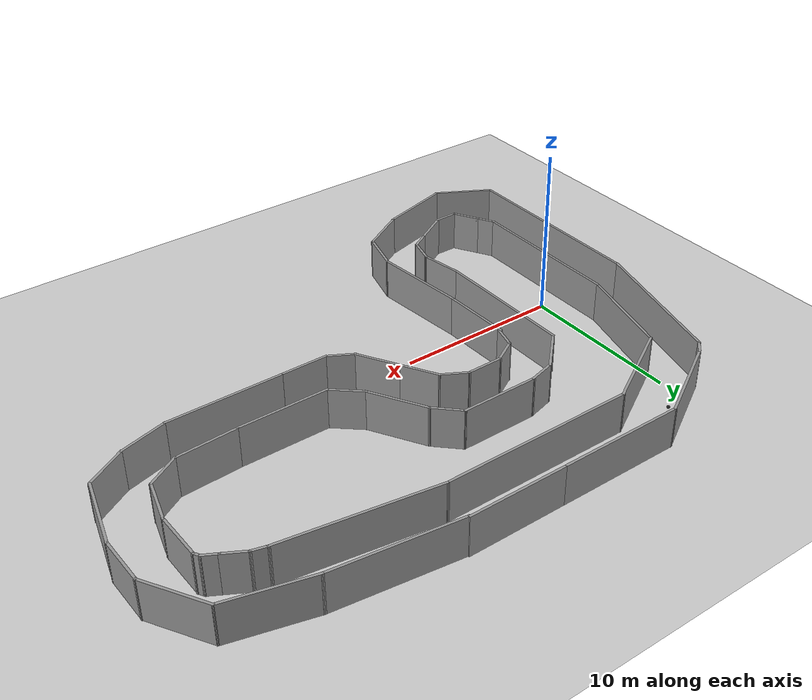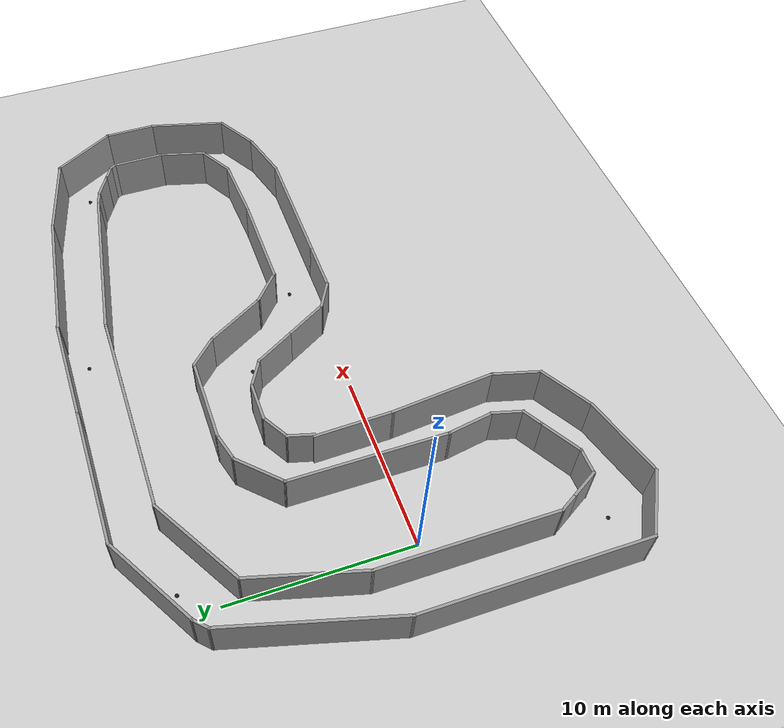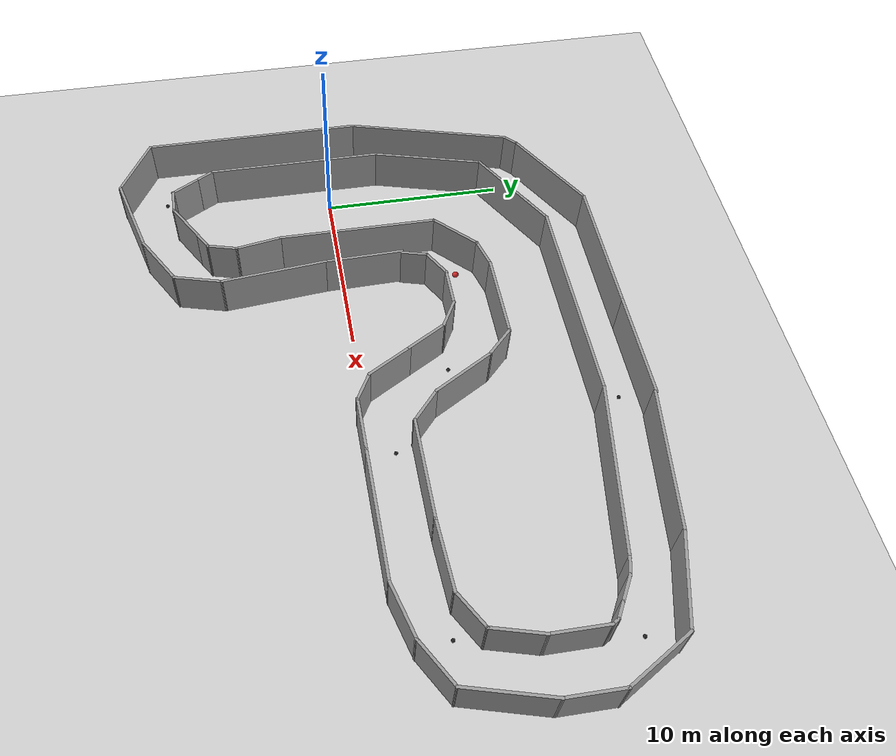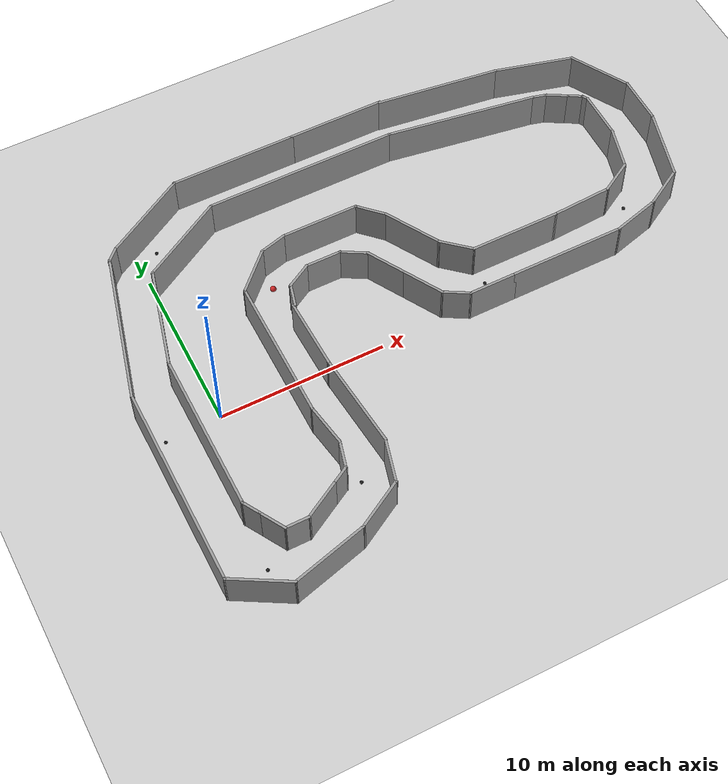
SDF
<sdf version="1.7">
 <world name="default">
  <light name="sun" type="directional">
   <pose>0 0 10 0 -0 0</pose>
   <diffuse>0.8 0.8 0.8 1</diffuse>
   <specular>0.2 0.2 0.2 1</specular>
   <attenuation>
    <range>1000</range>
    <constant>0.9</constant>
    <linear>0.01</linear>
    <quadratic>0.001</quadratic>
   </attenuation>
   <direction>-0.5 0.1 -0.9</direction>
   <spot><inner_angle>0</inner_angle><outer_angle>0</outer_angle><falloff>0</falloff></spot>
  </light>
  <model name="ground_plane">
   <static>1</static>
   <link name="link">
    <collision name="collision">
     <geometry><plane><normal>0 0 1</normal><size>100 100</size></plane></geometry>
     <surface>
      <contact><collide_bitmask>65535</collide_bitmask></contact>
      <friction><ode><mu>100</mu><mu2>50</mu2></ode></friction>
     </surface>
    </collision>
    <visual name="visual">
     <cast_shadows>0</cast_shadows>
     <geometry><plane><normal>0 0 1</normal><size>100 100</size></plane></geometry>
     <material>
      <script><uri>file://media/materials/scripts/gazebo.material</uri><name>Gazebo/Grey</name></script>
     </material>
    </visual>
   </link>
  </model>
  <gravity>0 0 -9.8</gravity>
  <magnetic_field>6e-06 2.3e-05 -4.2e-05</magnetic_field>
  <atmosphere type="adiabatic"/>
  <physics type="ode">
   <max_step_size>0.001</max_step_size>
   <real_time_factor>1</real_time_factor>
   <real_time_update_rate>1000</real_time_update_rate>
  </physics>
  <scene><ambient>0.4 0.4 0.4 1</ambient><background>0.7 0.7 0.7 1</background><shadows>1</shadows></scene>
  <spherical_coordinates>
   <surface_model>EARTH_WGS84</surface_model>
   <latitude_deg>0</latitude_deg>
   <longitude_deg>0</longitude_deg>
   <elevation>0</elevation>
   <heading_deg>0</heading_deg>
  </spherical_coordinates>
  <model name="track_0">
   <pose>13.4852 1.17639 0 0 -0 0</pose>
   <link name="Wall_0">
    <collision name="Wall_0_Collision">
     <geometry><box><size>8.75 0.15 2.5</size></box></geometry>
     <pose>0 0 1.25 0 -0 0</pose>
    </collision>
    <visual name="Wall_0_Visual">
     <pose>0 0 1.25 0 -0 0</pose>
     <geometry><box><size>8.75 0.15 2.5</size></box></geometry>
     <material>
      <script><uri>file://media/materials/scripts/gazebo.material</uri><name>Gazebo/Grey</name></script>
      <ambient>1 1 1 1</ambient>
     </material>
     <meta><layer>0</layer></meta>
    </visual>
    <pose>-9.34764 -0.033182 0 0 -0 -1.5708</pose>
   </link>
   <link name="Wall_10">
    <collision name="Wall_10_Collision">
     <geometry><box><size>5.5 0.15 2.5</size></box></geometry>
     <pose>0 0 1.25 0 -0 0</pose>
    </collision>
    <visual name="Wall_10_Visual">
     <pose>0 0 1.25 0 -0 0</pose>
     <geometry><box><size>5.5 0.15 2.5</size></box></geometry>
     <material>
      <script><uri>file://media/materials/scripts/gazebo.material</uri><name>Gazebo/Grey</name></script>
      <ambient>1 1 1 1</ambient>
     </material>
     <meta><layer>0</layer></meta>
    </visual>
    <pose>6.11964 0.909249 0 0 -0 0</pose>
   </link>
   <link name="Wall_11">
    <collision name="Wall_11_Collision">
     <geometry><box><size>3.76655 0.15 2.5</size></box></geometry>
     <pose>0 0 1.25 0 -0 0</pose>
    </collision>
    <visual name="Wall_11_Visual">
     <pose>0 0 1.25 0 -0 0</pose>
     <geometry><box><size>3.76655 0.15 2.5</size></box></geometry>
     <material>
      <script><uri>file://media/materials/scripts/gazebo.material</uri><name>Gazebo/Grey</name></script>
      <ambient>1 1 1 1</ambient>
     </material>
     <meta><layer>0</layer></meta>
    </visual>
    <pose>10.6005 1.0023 0 0 -0 0.051479</pose>
   </link>
   <link name="Wall_12">
    <collision name="Wall_12_Collision">
     <geometry><box><size>2.25 0.15 2.5</size></box></geometry>
     <pose>0 0 1.25 0 -0 0</pose>
    </collision>
    <visual name="Wall_12_Visual">
     <pose>0 0 1.25 0 -0 0</pose>
     <geometry><box><size>2.25 0.15 2.5</size></box></geometry>
     <material>
      <script><uri>file://media/materials/scripts/gazebo.material</uri><name>Gazebo/Grey</name></script>
      <ambient>1 1 1 1</ambient>
     </material>
     <meta><layer>0</layer></meta>
    </visual>
    <pose>13.3157 1.62034 0 0 -0 0.523599</pose>
   </link>
   <link name="Wall_13">
    <collision name="Wall_13_Collision">
     <geometry><box><size>2.75 0.15 2.5</size></box></geometry>
     <pose>0 0 1.25 0 -0 0</pose>
    </collision>
    <visual name="Wall_13_Visual">
     <pose>0 0 1.25 0 -0 0</pose>
     <geometry><box><size>2.75 0.15 2.5</size></box></geometry>
     <material>
      <script><uri>file://media/materials/scripts/gazebo.material</uri><name>Gazebo/Grey</name></script>
      <ambient>1 1 1 1</ambient>
     </material>
     <meta><layer>0</layer></meta>
    </visual>
    <pose>14.5615 3.40105 0 0 -0 1.309</pose>
   </link>
   <link name="Wall_14">
    <collision name="Wall_14_Collision">
     <geometry><box><size>3 0.15 2.5</size></box></geometry>
     <pose>0 0 1.25 0 -0 0</pose>
    </collision>
    <visual name="Wall_14_Visual">
     <pose>0 0 1.25 0 -0 0</pose>
     <geometry><box><size>3 0.15 2.5</size></box></geometry>
     <material>
      <script><uri>file://media/materials/scripts/gazebo.material</uri><name>Gazebo/Grey</name></script>
      <ambient>1 1 1 1</ambient>
     </material>
     <meta><layer>0</layer></meta>
    </visual>
    <pose>14.898 6.08175 0 0 -0 1.5708</pose>
   </link>
   <link name="Wall_15">
    <collision name="Wall_15_Collision">
     <geometry><box><size>0.5 0.15 2.5</size></box></geometry>
     <pose>0 0 1.25 0 -0 0</pose>
    </collision>
    <visual name="Wall_15_Visual">
     <pose>0 0 1.25 0 -0 0</pose>
     <geometry><box><size>0.5 0.15 2.5</size></box></geometry>
     <material>
      <script><uri>file://media/materials/scripts/gazebo.material</uri><name>Gazebo/Grey</name></script>
      <ambient>1 1 1 1</ambient>
     </material>
     <meta><layer>0</layer></meta>
    </visual>
    <pose>14.8105 7.65831 0 0 -0 2.0944</pose>
   </link>
   <link name="Wall_16">
    <collision name="Wall_16_Collision">
     <geometry><box><size>1 0.15 2.5</size></box></geometry>
     <pose>0 0 1.25 0 -0 0</pose>
    </collision>
    <visual name="Wall_16_Visual">
     <pose>0 0 1.25 0 -0 0</pose>
     <geometry><box><size>1 0.15 2.5</size></box></geometry>
     <material>
      <script><uri>file://media/materials/scripts/gazebo.material</uri><name>Gazebo/Grey</name></script>
      <ambient>1 1 1 1</ambient>
     </material>
     <meta><layer>0</layer></meta>
    </visual>
    <pose>14.3549 8.02236 0 0 -0 2.61799</pose>
   </link>
   <link name="Wall_17">
    <collision name="Wall_17_Collision">
     <geometry><box><size>1.5 0.15 2.5</size></box></geometry>
     <pose>0 0 1.25 0 -0 0</pose>
    </collision>
    <visual name="Wall_17_Visual">
     <pose>0 0 1.25 0 -0 0</pose>
     <geometry><box><size>1.5 0.15 2.5</size></box></geometry>
     <material>
      <script><uri>file://media/materials/scripts/gazebo.material</uri><name>Gazebo/Grey</name></script>
      <ambient>1 1 1 1</ambient>
     </material>
     <meta><layer>0</layer></meta>
    </visual>
    <pose>13.4023 8.57236 0 0 -0 2.61799</pose>
   </link>
   <link name="Wall_18">
    <collision name="Wall_18_Collision">
     <geometry><box><size>1 0.15 2.5</size></box></geometry>
     <pose>0 0 1.25 0 -0 0</pose>
    </collision>
    <visual name="Wall_18_Visual">
     <pose>0 0 1.25 0 -0 0</pose>
     <geometry><box><size>1 0.15 2.5</size></box></geometry>
     <material>
      <script><uri>file://media/materials/scripts/gazebo.material</uri><name>Gazebo/Grey</name></script>
      <ambient>1 1 1 1</ambient>
     </material>
     <meta><layer>0</layer></meta>
    </visual>
    <pose>12.4072 9.01986 0 0 -0 2.87979</pose>
   </link>
   <link name="Wall_19">
    <collision name="Wall_19_Collision">
     <geometry><box><size>9.26731 0.15 2.5</size></box></geometry>
     <pose>0 0 1.25 0 -0 0</pose>
    </collision>
    <visual name="Wall_19_Visual">
     <pose>0 0 1.25 0 -0 0</pose>
     <geometry><box><size>9.26731 0.15 2.5</size></box></geometry>
     <material>
      <script><uri>file://media/materials/scripts/gazebo.material</uri><name>Gazebo/Grey</name></script>
      <ambient>1 1 1 1</ambient>
     </material>
     <meta><layer>0</layer></meta>
    </visual>
    <pose>7.4935 9.83885 0 0 -0 2.98543</pose>
   </link>
   <link name="Wall_20">
    <collision name="Wall_20_Collision">
     <geometry><box><size>11.75 0.15 2.5</size></box></geometry>
     <pose>0 0 1.25 0 -0 0</pose>
    </collision>
    <visual name="Wall_20_Visual">
     <pose>0 0 1.25 0 -0 0</pose>
     <geometry><box><size>11.75 0.15 2.5</size></box></geometry>
     <material>
      <script><uri>file://media/materials/scripts/gazebo.material</uri><name>Gazebo/Grey</name></script>
      <ambient>1 1 1 1</ambient>
     </material>
     <meta><layer>0</layer></meta>
    </visual>
    <pose>-2.80968 10.5478 0 0 -0 3.14159</pose>
   </link>
   <link name="Wall_22">
    <collision name="Wall_22_Collision">
     <geometry><box><size>5.75 0.15 2.5</size></box></geometry>
     <pose>0 0 1.25 0 -0 0</pose>
    </collision>
    <visual name="Wall_22_Visual">
     <pose>0 0 1.25 0 -0 0</pose>
     <geometry><box><size>5.75 0.15 2.5</size></box></geometry>
     <material>
      <script><uri>file://media/materials/scripts/gazebo.material</uri><name>Gazebo/Grey</name></script>
      <ambient>1 1 1 1</ambient>
     </material>
     <meta><layer>0</layer></meta>
    </visual>
    <pose>-11.0346 9.14784 0 0 -0 -2.61799</pose>
   </link>
   <link name="Wall_23">
    <collision name="Wall_23_Collision">
     <geometry><box><size>6.25 0.15 2.5</size></box></geometry>
     <pose>0 0 1.25 0 -0 0</pose>
    </collision>
    <visual name="Wall_23_Visual">
     <pose>0 0 1.25 0 -0 0</pose>
     <geometry><box><size>6.25 0.15 2.5</size></box></geometry>
     <material>
      <script><uri>file://media/materials/scripts/gazebo.material</uri><name>Gazebo/Grey</name></script>
      <ambient>1 1 1 1</ambient>
     </material>
     <meta><layer>0</layer></meta>
    </visual>
    <pose>-14.2488 4.80176 0 0 -0 -1.8326</pose>
   </link>
   <link name="Wall_25">
    <collision name="Wall_25_Collision">
     <geometry><box><size>4.35837 0.15 2.5</size></box></geometry>
     <pose>0 0 1.25 0 -0 0</pose>
    </collision>
    <visual name="Wall_25_Visual">
     <pose>0 0 1.25 0 -0 0</pose>
     <geometry><box><size>4.35837 0.15 2.5</size></box></geometry>
     <material>
      <script><uri>file://media/materials/scripts/gazebo.material</uri><name>Gazebo/Grey</name></script>
      <ambient>1 1 1 1</ambient>
     </material>
     <meta><layer>0</layer></meta>
    </visual>
    <pose>-7.32116 0.004506 0 0 -0 1.59623</pose>
   </link>
   <link name="Wall_26">
    <collision name="Wall_26_Collision">
     <geometry><box><size>1.5 0.15 2.5</size></box></geometry>
     <pose>0 0 1.25 0 -0 0</pose>
    </collision>
    <visual name="Wall_26_Visual">
     <pose>0 0 1.25 0 -0 0</pose>
     <geometry><box><size>1.5 0.15 2.5</size></box></geometry>
     <material>
      <script><uri>file://media/materials/scripts/gazebo.material</uri><name>Gazebo/Grey</name></script>
      <ambient>1 1 1 1</ambient>
     </material>
     <meta><layer>0</layer></meta>
    </visual>
    <pose>-7.09296 2.76001 0 0 -0 1.309</pose>
   </link>
   <link name="Wall_30">
    <collision name="Wall_30_Collision">
     <geometry><box><size>1.75 0.15 2.5</size></box></geometry>
     <pose>0 0 1.25 0 -0 0</pose>
    </collision>
    <visual name="Wall_30_Visual">
     <pose>0 0 1.25 0 -0 0</pose>
     <geometry><box><size>1.75 0.15 2.5</size></box></geometry>
     <material>
      <script><uri>file://media/materials/scripts/gazebo.material</uri><name>Gazebo/Grey</name></script>
      <ambient>1 1 1 1</ambient>
     </material>
     <meta><layer>0</layer></meta>
    </visual>
    <pose>-6.22543 3.81201 0 0 -0 0.523599</pose>
   </link>
   <link name="Wall_31">
    <collision name="Wall_31_Collision">
     <geometry><box><size>2.25 0.15 2.5</size></box></geometry>
     <pose>0 0 1.25 0 -0 0</pose>
    </collision>
    <visual name="Wall_31_Visual">
     <pose>0 0 1.25 0 -0 0</pose>
     <geometry><box><size>2.25 0.15 2.5</size></box></geometry>
     <material>
      <script><uri>file://media/materials/scripts/gazebo.material</uri><name>Gazebo/Grey</name></script>
      <ambient>1 1 1 1</ambient>
     </material>
     <meta><layer>0</layer></meta>
    </visual>
    <pose>-4.48261 4.21201 0 0 -0 0</pose>
   </link>
   <link name="Wall_32">
    <collision name="Wall_32_Collision">
     <geometry><box><size>1.75 0.15 2.5</size></box></geometry>
     <pose>0 0 1.25 0 -0 0</pose>
    </collision>
    <visual name="Wall_32_Visual">
     <pose>0 0 1.25 0 -0 0</pose>
     <geometry><box><size>1.75 0.15 2.5</size></box></geometry>
     <material>
      <script><uri>file://media/materials/scripts/gazebo.material</uri><name>Gazebo/Grey</name></script>
      <ambient>1 1 1 1</ambient>
     </material>
     <meta><layer>0</layer></meta>
    </visual>
    <pose>-2.73979 3.81201 0 0 -0 -0.523599</pose>
   </link>
   <link name="Wall_33">
    <collision name="Wall_33_Collision">
     <geometry><box><size>2.5 0.15 2.5</size></box></geometry>
     <pose>0 0 1.25 0 -0 0</pose>
    </collision>
    <visual name="Wall_33_Visual">
     <pose>0 0 1.25 0 -0 0</pose>
     <geometry><box><size>2.5 0.15 2.5</size></box></geometry>
     <material>
      <script><uri>file://media/materials/scripts/gazebo.material</uri><name>Gazebo/Grey</name></script>
      <ambient>1 1 1 1</ambient>
     </material>
     <meta><layer>0</layer></meta>
    </visual>
    <pose>-1.45947 2.39443 0 0 -0 -1.0472</pose>
   </link>
   <link name="Wall_34">
    <collision name="Wall_34_Collision">
     <geometry><box><size>2.75 0.15 2.5</size></box></geometry>
     <pose>0 0 1.25 0 -0 0</pose>
    </collision>
    <visual name="Wall_34_Visual">
     <pose>0 0 1.25 0 -0 0</pose>
     <geometry><box><size>2.75 0.15 2.5</size></box></geometry>
     <material>
      <script><uri>file://media/materials/scripts/gazebo.material</uri><name>Gazebo/Grey</name></script>
      <ambient>1 1 1 1</ambient>
     </material>
     <meta><layer>0</layer></meta>
    </visual>
    <pose>-0.221973 0.251015 0 0 -0 -1.0472</pose>
   </link>
   <link name="Wall_35">
    <collision name="Wall_35_Collision">
     <geometry><box><size>1.75 0.15 2.5</size></box></geometry>
     <pose>0 0 1.25 0 -0 0</pose>
    </collision>
    <visual name="Wall_35_Visual">
     <pose>0 0 1.25 0 -0 0</pose>
     <geometry><box><size>1.75 0.15 2.5</size></box></geometry>
     <material>
      <script><uri>file://media/materials/scripts/gazebo.material</uri><name>Gazebo/Grey</name></script>
      <ambient>1 1 1 1</ambient>
     </material>
     <meta><layer>0</layer></meta>
    </visual>
    <pose>1.12085 -1.27482 0 0 -0 -0.523599</pose>
   </link>
   <link name="Wall_36">
    <collision name="Wall_36_Collision">
     <geometry><box><size>3 0.15 2.5</size></box></geometry>
     <pose>0 0 1.25 0 -0 0</pose>
    </collision>
    <visual name="Wall_36_Visual">
     <pose>0 0 1.25 0 -0 0</pose>
     <geometry><box><size>3 0.15 2.5</size></box></geometry>
     <material>
      <script><uri>file://media/materials/scripts/gazebo.material</uri><name>Gazebo/Grey</name></script>
      <ambient>1 1 1 1</ambient>
     </material>
     <meta><layer>0</layer></meta>
    </visual>
    <pose>3.23867 -1.67482 0 0 -0 0</pose>
   </link>
   <link name="Wall_37">
    <collision name="Wall_37_Collision">
     <geometry><box><size>7 0.15 2.5</size></box></geometry>
     <pose>0 0 1.25 0 -0 0</pose>
    </collision>
    <visual name="Wall_37_Visual">
     <pose>0 0 1.25 0 -0 0</pose>
     <geometry><box><size>7 0.15 2.5</size></box></geometry>
     <material>
      <script><uri>file://media/materials/scripts/gazebo.material</uri><name>Gazebo/Grey</name></script>
      <ambient>1 1 1 1</ambient>
     </material>
     <meta><layer>0</layer></meta>
    </visual>
    <pose>8.08867 -1.67482 0 0 -0 0</pose>
   </link>
   <link name="Wall_38">
    <collision name="Wall_38_Collision">
     <geometry><box><size>3 0.15 2.5</size></box></geometry>
     <pose>0 0 1.25 0 -0 0</pose>
    </collision>
    <visual name="Wall_38_Visual">
     <pose>0 0 1.25 0 -0 0</pose>
     <geometry><box><size>3 0.15 2.5</size></box></geometry>
     <material>
      <script><uri>file://media/materials/scripts/gazebo.material</uri><name>Gazebo/Grey</name></script>
      <ambient>1 1 1 1</ambient>
     </material>
     <meta><layer>0</layer></meta>
    </visual>
    <pose>12.8901 -1.306 0 0 -0 0.261799</pose>
   </link>
   <link name="Wall_39">
    <collision name="Wall_39_Collision">
     <geometry><box><size>2.75 0.15 2.5</size></box></geometry>
     <pose>0 0 1.25 0 -0 0</pose>
    </collision>
    <visual name="Wall_39_Visual">
     <pose>0 0 1.25 0 -0 0</pose>
     <geometry><box><size>2.75 0.15 2.5</size></box></geometry>
     <material>
      <script><uri>file://media/materials/scripts/gazebo.material</uri><name>Gazebo/Grey</name></script>
      <ambient>1 1 1 1</ambient>
     </material>
     <meta><layer>0</layer></meta>
    </visual>
    <pose>15.3924 -0.287184 0 0 -0 0.523599</pose>
   </link>
   <link name="Wall_4">
    <collision name="Wall_4_Collision">
     <geometry><box><size>3 0.15 2.5</size></box></geometry>
     <pose>0 0 1.25 0 -0 0</pose>
    </collision>
    <visual name="Wall_4_Visual">
     <pose>0 0 1.25 0 -0 0</pose>
     <geometry><box><size>3 0.15 2.5</size></box></geometry>
     <material>
      <script><uri>file://media/materials/scripts/gazebo.material</uri><name>Gazebo/Grey</name></script>
      <ambient>1 1 1 1</ambient>
     </material>
     <meta><layer>0</layer></meta>
    </visual>
    <pose>-8.34001 5.27445 0 0 -0 0.785398</pose>
   </link>
   <link name="Wall_40">
    <collision name="Wall_40_Collision">
     <geometry><box><size>4.5 0.15 2.5</size></box></geometry>
     <pose>0 0 1.25 0 -0 0</pose>
    </collision>
    <visual name="Wall_40_Visual">
     <pose>0 0 1.25 0 -0 0</pose>
     <geometry><box><size>4.5 0.15 2.5</size></box></geometry>
     <material>
      <script><uri>file://media/materials/scripts/gazebo.material</uri><name>Gazebo/Grey</name></script>
      <ambient>1 1 1 1</ambient>
     </material>
     <meta><layer>0</layer></meta>
    </visual>
    <pose>17.0812 2.46371 0 0 -0 1.309</pose>
   </link>
   <link name="Wall_41">
    <collision name="Wall_41_Collision">
     <geometry><box><size>3 0.15 2.5</size></box></geometry>
     <pose>0 0 1.25 0 -0 0</pose>
    </collision>
    <visual name="Wall_41_Visual">
     <pose>0 0 1.25 0 -0 0</pose>
     <geometry><box><size>3 0.15 2.5</size></box></geometry>
     <material>
      <script><uri>file://media/materials/scripts/gazebo.material</uri><name>Gazebo/Grey</name></script>
      <ambient>1 1 1 1</ambient>
     </material>
     <meta><layer>0</layer></meta>
    </visual>
    <pose>17.6441 5.98959 0 0 -0 1.5708</pose>
   </link>
   <link name="Wall_42">
    <collision name="Wall_42_Collision">
     <geometry><box><size>4 0.15 2.5</size></box></geometry>
     <pose>0 0 1.25 0 -0 0</pose>
    </collision>
    <visual name="Wall_42_Visual">
     <pose>0 0 1.25 0 -0 0</pose>
     <geometry><box><size>4 0.15 2.5</size></box></geometry>
     <material>
      <script><uri>file://media/materials/scripts/gazebo.material</uri><name>Gazebo/Grey</name></script>
      <ambient>1 1 1 1</ambient>
     </material>
     <meta><layer>0</layer></meta>
    </visual>
    <pose>16.6816 9.08169 0 0 -0 2.0944</pose>
   </link>
   <link name="Wall_43">
    <collision name="Wall_43_Collision">
     <geometry><box><size>5 0.15 2.5</size></box></geometry>
     <pose>0 0 1.25 0 -0 0</pose>
    </collision>
    <visual name="Wall_43_Visual">
     <pose>0 0 1.25 0 -0 0</pose>
     <geometry><box><size>5 0.15 2.5</size></box></geometry>
     <material>
      <script><uri>file://media/materials/scripts/gazebo.material</uri><name>Gazebo/Grey</name></script>
      <ambient>1 1 1 1</ambient>
     </material>
     <meta><layer>0</layer></meta>
    </visual>
    <pose>13.3767 11.3764 0 0 -0 2.87979</pose>
   </link>
   <link name="Wall_44">
    <collision name="Wall_44_Collision">
     <geometry><box><size>7.63781 0.15 2.5</size></box></geometry>
     <pose>0 0 1.25 0 -0 0</pose>
    </collision>
    <visual name="Wall_44_Visual">
     <pose>0 0 1.25 0 -0 0</pose>
     <geometry><box><size>7.63781 0.15 2.5</size></box></geometry>
     <material>
      <script><uri>file://media/materials/scripts/gazebo.material</uri><name>Gazebo/Grey</name></script>
      <ambient>1 1 1 1</ambient>
     </material>
     <meta><layer>0</layer></meta>
    </visual>
    <pose>7.32315 12.4979 0 0 -0 3.00931</pose>
   </link>
   <link name="Wall_45">
    <collision name="Wall_45_Collision">
     <geometry><box><size>6 0.15 2.5</size></box></geometry>
     <pose>0 0 1.25 0 -0 0</pose>
    </collision>
    <visual name="Wall_45_Visual">
     <pose>0 0 1.25 0 -0 0</pose>
     <geometry><box><size>6 0.15 2.5</size></box></geometry>
     <material>
      <script><uri>file://media/materials/scripts/gazebo.material</uri><name>Gazebo/Grey</name></script>
      <ambient>1 1 1 1</ambient>
     </material>
     <meta><layer>0</layer></meta>
    </visual>
    <pose>0.686952 13.0455 0 0 -0 3.14159</pose>
   </link>
   <link name="Wall_47">
    <collision name="Wall_47_Collision">
     <geometry><box><size>7.75 0.15 2.5</size></box></geometry>
     <pose>0 0 1.25 0 -0 0</pose>
    </collision>
    <visual name="Wall_47_Visual">
     <pose>0 0 1.25 0 -0 0</pose>
     <geometry><box><size>7.75 0.15 2.5</size></box></geometry>
     <material>
      <script><uri>file://media/materials/scripts/gazebo.material</uri><name>Gazebo/Grey</name></script>
      <ambient>1 1 1 1</ambient>
     </material>
     <meta><layer>0</layer></meta>
    </visual>
    <pose>-6.03805 13.0455 0 0 -0 3.14159</pose>
   </link>
   <link name="Wall_48">
    <collision name="Wall_48_Collision">
     <geometry><box><size>5.75 0.15 2.5</size></box></geometry>
     <pose>0 0 1.25 0 -0 0</pose>
    </collision>
    <visual name="Wall_48_Visual">
     <pose>0 0 1.25 0 -0 0</pose>
     <geometry><box><size>5.75 0.15 2.5</size></box></geometry>
     <material>
      <script><uri>file://media/materials/scripts/gazebo.material</uri><name>Gazebo/Grey</name></script>
      <ambient>1 1 1 1</ambient>
     </material>
     <meta><layer>0</layer></meta>
    </visual>
    <pose>-12.2629 11.6455 0 0 -0 -2.61799</pose>
   </link>
   <link name="Wall_49">
    <collision name="Wall_49_Collision">
     <geometry><box><size>1 0.15 2.5</size></box></geometry>
     <pose>0 0 1.25 0 -0 0</pose>
    </collision>
    <visual name="Wall_49_Visual">
     <pose>0 0 1.25 0 -0 0</pose>
     <geometry><box><size>1 0.15 2.5</size></box></geometry>
     <material>
      <script><uri>file://media/materials/scripts/gazebo.material</uri><name>Gazebo/Grey</name></script>
      <ambient>1 1 1 1</ambient>
     </material>
     <meta><layer>0</layer></meta>
    </visual>
    <pose>-14.9883 9.94496 0 0 -0 -2.35619</pose>
   </link>
   <link name="Wall_5">
    <collision name="Wall_5_Collision">
     <geometry><box><size>1.75 0.15 2.5</size></box></geometry>
     <pose>0 0 1.25 0 -0 0</pose>
    </collision>
    <visual name="Wall_5_Visual">
     <pose>0 0 1.25 0 -0 0</pose>
     <geometry><box><size>1.75 0.15 2.5</size></box></geometry>
     <material>
      <script><uri>file://media/materials/scripts/gazebo.material</uri><name>Gazebo/Grey</name></script>
      <ambient>1 1 1 1</ambient>
     </material>
     <meta><layer>0</layer></meta>
    </visual>
    <pose>-6.55965 6.48913 0 0 -0 0.261799</pose>
   </link>
   <link name="Wall_50">
    <collision name="Wall_50_Collision">
     <geometry><box><size>9.25 0.15 2.5</size></box></geometry>
     <pose>0 0 1.25 0 -0 0</pose>
    </collision>
    <visual name="Wall_50_Visual">
     <pose>0 0 1.25 0 -0 0</pose>
     <geometry><box><size>9.25 0.15 2.5</size></box></geometry>
     <material>
      <script><uri>file://media/materials/scripts/gazebo.material</uri><name>Gazebo/Grey</name></script>
      <ambient>1 1 1 1</ambient>
     </material>
     <meta><layer>0</layer></meta>
    </visual>
    <pose>-16.4665 5.24948 0 0 -0 -1.8326</pose>
   </link>
   <link name="Wall_51">
    <collision name="Wall_51_Collision">
     <geometry><box><size>12.25 0.15 2.5</size></box></geometry>
     <pose>0 0 1.25 0 -0 0</pose>
    </collision>
    <visual name="Wall_51_Visual">
     <pose>0 0 1.25 0 -0 0</pose>
     <geometry><box><size>12.25 0.15 2.5</size></box></geometry>
     <material>
      <script><uri>file://media/materials/scripts/gazebo.material</uri><name>Gazebo/Grey</name></script>
      <ambient>1 1 1 1</ambient>
     </material>
     <meta><layer>0</layer></meta>
    </visual>
    <pose>-17.6441 -5.19548 0 0 -0 -1.5708</pose>
   </link>
   <link name="Wall_52">
    <collision name="Wall_52_Collision">
     <geometry><box><size>3.75 0.15 2.5</size></box></geometry>
     <pose>0 0 1.25 0 -0 0</pose>
    </collision>
    <visual name="Wall_52_Visual">
     <pose>0 0 1.25 0 -0 0</pose>
     <geometry><box><size>3.75 0.15 2.5</size></box></geometry>
     <material>
      <script><uri>file://media/materials/scripts/gazebo.material</uri><name>Gazebo/Grey</name></script>
      <ambient>1 1 1 1</ambient>
     </material>
     <meta><layer>0</layer></meta>
    </visual>
    <pose>-16.0852 -12.1455 0 0 -0 -0.523599</pose>
   </link>
   <link name="Wall_53">
    <collision name="Wall_53_Collision">
     <geometry><box><size>4.75 0.15 2.5</size></box></geometry>
     <pose>0 0 1.25 0 -0 0</pose>
    </collision>
    <visual name="Wall_53_Visual">
     <pose>0 0 1.25 0 -0 0</pose>
     <geometry><box><size>4.75 0.15 2.5</size></box></geometry>
     <material>
      <script><uri>file://media/materials/scripts/gazebo.material</uri><name>Gazebo/Grey</name></script>
      <ambient>1 1 1 1</ambient>
     </material>
     <meta><layer>0</layer></meta>
    </visual>
    <pose>-12.3048 -12.4502 0 0 -0 0.261799</pose>
   </link>
   <link name="Wall_54">
    <collision name="Wall_54_Collision">
     <geometry><box><size>3.25 0.15 2.5</size></box></geometry>
     <pose>0 0 1.25 0 -0 0</pose>
    </collision>
    <visual name="Wall_54_Visual">
     <pose>0 0 1.25 0 -0 0</pose>
     <geometry><box><size>3.25 0.15 2.5</size></box></geometry>
     <material>
      <script><uri>file://media/materials/scripts/gazebo.material</uri><name>Gazebo/Grey</name></script>
      <ambient>1 1 1 1</ambient>
     </material>
     <meta><layer>0</layer></meta>
    </visual>
    <pose>-8.74079 -11.0799 0 0 -0 0.523599</pose>
   </link>
   <link name="Wall_55">
    <collision name="Wall_55_Collision">
     <geometry><box><size>2.75 0.15 2.5</size></box></geometry>
     <pose>0 0 1.25 0 -0 0</pose>
    </collision>
    <visual name="Wall_55_Visual">
     <pose>0 0 1.25 0 -0 0</pose>
     <geometry><box><size>2.75 0.15 2.5</size></box></geometry>
     <material>
      <script><uri>file://media/materials/scripts/gazebo.material</uri><name>Gazebo/Grey</name></script>
      <ambient>1 1 1 1</ambient>
     </material>
     <meta><layer>0</layer></meta>
    </visual>
    <pose>-7.06199 -9.04921 0 0 -0 1.309</pose>
   </link>
   <link name="Wall_56">
    <collision name="Wall_56_Collision">
     <geometry><box><size>5.87026 0.15 2.5</size></box></geometry>
     <pose>0 0 1.25 0 -0 0</pose>
    </collision>
    <visual name="Wall_56_Visual">
     <pose>0 0 1.25 0 -0 0</pose>
     <geometry><box><size>5.87026 0.15 2.5</size></box></geometry>
     <material>
      <script><uri>file://media/materials/scripts/gazebo.material</uri><name>Gazebo/Grey</name></script>
      <ambient>1 1 1 1</ambient>
     </material>
     <meta><layer>0</layer></meta>
    </visual>
    <pose>-6.99659 -4.94625 0 0 -0 1.66571</pose>
   </link>
   <link name="Wall_58">
    <collision name="Wall_58_Collision">
     <geometry><box><size>9.75 0.15 2.5</size></box></geometry>
     <pose>0 0 1.25 0 -0 0</pose>
    </collision>
    <visual name="Wall_58_Visual">
     <pose>0 0 1.25 0 -0 0</pose>
     <geometry><box><size>9.75 0.15 2.5</size></box></geometry>
     <material>
      <script><uri>file://media/materials/scripts/gazebo.material</uri><name>Gazebo/Grey</name></script>
      <ambient>1 1 1 1</ambient>
     </material>
     <meta><layer>0</layer></meta>
    </visual>
    <pose>-15.0382 -2.94431 0 0 -0 -1.5708</pose>
   </link>
   <link name="Wall_59">
    <collision name="Wall_59_Collision">
     <geometry><box><size>1.25 0.15 2.5</size></box></geometry>
     <pose>0 0 1.25 0 -0 0</pose>
    </collision>
    <visual name="Wall_59_Visual">
     <pose>0 0 1.25 0 -0 0</pose>
     <geometry><box><size>1.25 0.15 2.5</size></box></geometry>
     <material>
      <script><uri>file://media/materials/scripts/gazebo.material</uri><name>Gazebo/Grey</name></script>
      <ambient>1 1 1 1</ambient>
     </material>
     <meta><layer>0</layer></meta>
    </visual>
    <pose>-14.7632 -8.22063 0 0 -0 -1.0472</pose>
   </link>
   <link name="Wall_6">
    <collision name="Wall_6_Collision">
     <geometry><box><size>4.75 0.15 2.5</size></box></geometry>
     <pose>0 0 1.25 0 -0 0</pose>
    </collision>
    <visual name="Wall_6_Visual">
     <pose>0 0 1.25 0 -0 0</pose>
     <geometry><box><size>4.75 0.15 2.5</size></box></geometry>
     <material>
      <script><uri>file://media/materials/scripts/gazebo.material</uri><name>Gazebo/Grey</name></script>
      <ambient>1 1 1 1</ambient>
     </material>
     <meta><layer>0</layer></meta>
    </visual>
    <pose>-3.48691 6.69618 0 0 -0 0</pose>
   </link>
   <link name="Wall_60">
    <collision name="Wall_60_Collision">
     <geometry><box><size>1.75 0.15 2.5</size></box></geometry>
     <pose>0 0 1.25 0 -0 0</pose>
    </collision>
    <visual name="Wall_60_Visual">
     <pose>0 0 1.25 0 -0 0</pose>
     <geometry><box><size>1.75 0.15 2.5</size></box></geometry>
     <material>
      <script><uri>file://media/materials/scripts/gazebo.material</uri><name>Gazebo/Grey</name></script>
      <ambient>1 1 1 1</ambient>
     </material>
     <meta><layer>0</layer></meta>
    </visual>
    <pose>-14.0882 -9.38976 0 0 -0 -1.0472</pose>
   </link>
   <link name="Wall_61">
    <collision name="Wall_61_Collision">
     <geometry><box><size>1.5 0.15 2.5</size></box></geometry>
     <pose>0 0 1.25 0 -0 0</pose>
    </collision>
    <visual name="Wall_61_Visual">
     <pose>0 0 1.25 0 -0 0</pose>
     <geometry><box><size>1.5 0.15 2.5</size></box></geometry>
     <material>
      <script><uri>file://media/materials/scripts/gazebo.material</uri><name>Gazebo/Grey</name></script>
      <ambient>1 1 1 1</ambient>
     </material>
     <meta><layer>0</layer></meta>
    </visual>
    <pose>-13.0132 -10.0826 0 0 -0 0</pose>
   </link>
   <link name="Wall_62">
    <collision name="Wall_62_Collision">
     <geometry><box><size>2.5 0.15 2.5</size></box></geometry>
     <pose>0 0 1.25 0 -0 0</pose>
    </collision>
    <visual name="Wall_62_Visual">
     <pose>0 0 1.25 0 -0 0</pose>
     <geometry><box><size>2.5 0.15 2.5</size></box></geometry>
     <material>
      <script><uri>file://media/materials/scripts/gazebo.material</uri><name>Gazebo/Grey</name></script>
      <ambient>1 1 1 1</ambient>
     </material>
     <meta><layer>0</layer></meta>
    </visual>
    <pose>-11.3206 -9.49508 0 0 -0 0.523599</pose>
   </link>
   <link name="Wall_63">
    <collision name="Wall_63_Collision">
     <geometry><box><size>1.25 0.15 2.5</size></box></geometry>
     <pose>0 0 1.25 0 -0 0</pose>
    </collision>
    <visual name="Wall_63_Visual">
     <pose>0 0 1.25 0 -0 0</pose>
     <geometry><box><size>1.25 0.15 2.5</size></box></geometry>
     <material>
      <script><uri>file://media/materials/scripts/gazebo.material</uri><name>Gazebo/Grey</name></script>
      <ambient>1 1 1 1</ambient>
     </material>
     <meta><layer>0</layer></meta>
    </visual>
    <pose>-9.82675 -8.63258 0 0 -0 0.523599</pose>
   </link>
   <link name="Wall_64">
    <collision name="Wall_64_Collision">
     <geometry><box><size>1.75 0.15 2.5</size></box></geometry>
     <pose>0 0 1.25 0 -0 0</pose>
    </collision>
    <visual name="Wall_64_Visual">
     <pose>0 0 1.25 0 -0 0</pose>
     <geometry><box><size>1.75 0.15 2.5</size></box></geometry>
     <material>
      <script><uri>file://media/materials/scripts/gazebo.material</uri><name>Gazebo/Grey</name></script>
      <ambient>1 1 1 1</ambient>
     </material>
     <meta><layer>0</layer></meta>
    </visual>
    <pose>-9.14338 -7.58484 0 0 -0 1.309</pose>
   </link>
   <link name="Wall_65">
    <collision name="Wall_65_Collision">
     <geometry><box><size>2.66281 0.15 2.5</size></box></geometry>
     <pose>0 0 1.25 0 -0 0</pose>
    </collision>
    <visual name="Wall_65_Visual">
     <pose>0 0 1.25 0 -0 0</pose>
     <geometry><box><size>2.66281 0.15 2.5</size></box></geometry>
     <material>
      <script><uri>file://media/materials/scripts/gazebo.material</uri><name>Gazebo/Grey</name></script>
      <ambient>1 1 1 1</ambient>
     </material>
     <meta><layer>0</layer></meta>
    </visual>
    <pose>-9.14198 -5.57264 0 0 -0 1.73523</pose>
   </link>
   <link name="Wall_7">
    <collision name="Wall_7_Collision">
     <geometry><box><size>2 0.15 2.5</size></box></geometry>
     <pose>0 0 1.25 0 -0 0</pose>
    </collision>
    <visual name="Wall_7_Visual">
     <pose>0 0 1.25 0 -0 0</pose>
     <geometry><box><size>2 0.15 2.5</size></box></geometry>
     <material>
      <script><uri>file://media/materials/scripts/gazebo.material</uri><name>Gazebo/Grey</name></script>
      <ambient>1 1 1 1</ambient>
     </material>
     <meta><layer>0</layer></meta>
    </visual>
    <pose>-0.532833 6.04211 0 0 -0 -0.785398</pose>
   </link>
   <link name="Wall_8">
    <collision name="Wall_8_Collision">
     <geometry><box><size>3.75 0.15 2.5</size></box></geometry>
     <pose>0 0 1.25 0 -0 0</pose>
    </collision>
    <visual name="Wall_8_Visual">
     <pose>0 0 1.25 0 -0 0</pose>
     <geometry><box><size>3.75 0.15 2.5</size></box></geometry>
     <material>
      <script><uri>file://media/materials/scripts/gazebo.material</uri><name>Gazebo/Grey</name></script>
      <ambient>1 1 1 1</ambient>
     </material>
     <meta><layer>0</layer></meta>
    </visual>
    <pose>1.02124 3.82919 0 0 -0 -1.0472</pose>
   </link>
   <link name="Wall_9">
    <collision name="Wall_9_Collision">
     <geometry><box><size>2.19287 0.15 2.5</size></box></geometry>
     <pose>0 0 1.25 0 -0 0</pose>
    </collision>
    <visual name="Wall_9_Visual">
     <pose>0 0 1.25 0 -0 0</pose>
     <geometry><box><size>2.19287 0.15 2.5</size></box></geometry>
     <material>
      <script><uri>file://media/materials/scripts/gazebo.material</uri><name>Gazebo/Grey</name></script>
      <ambient>1 1 1 1</ambient>
     </material>
     <meta><layer>0</layer></meta>
    </visual>
    <pose>2.68294 1.5898 0 0 -0 -0.729191</pose>
   </link>
   <static>1</static>
  </model>
  <model name="cp_marker">
   <link name="link">
    <inertial>
     <mass>1</mass>
     <inertia><ixx>0.1</ixx><ixy>0</ixy><ixz>0</ixz><iyy>0.1</iyy><iyz>0</iyz><izz>0.1</izz></inertia>
    </inertial>
    <gravity>0</gravity>
    <visual name="visual">
     <geometry><sphere><radius>0.1</radius></sphere></geometry>
     <material>
      <script><name>Gazebo/Black</name><uri>file://media/materials/scripts/gazebo.material</uri></script>
      <shader type="pixel"/>
     </material>
    </visual>
   </link>
   <static>0</static>
   <pose>6.23892 6.43439 0 0 -0 0</pose>
  </model>
  <model name="cp_marker_0">
   <link name="link">
    <inertial>
     <mass>1</mass>
     <inertia><ixx>0.1</ixx><ixy>0</ixy><ixz>0</ixz><iyy>0.1</iyy><iyz>0</iyz><izz>0.1</izz></inertia>
    </inertial>
    <gravity>0</gravity>
    <visual name="visual">
     <geometry><sphere><radius>0.1</radius></sphere></geometry>
     <material>
      <script><name>Gazebo/Black</name><uri>file://media/materials/scripts/gazebo.material</uri></script>
      <shader type="pixel"/>
     </material>
    </visual>
   </link>
   <static>0</static>
   <pose>12.6111 4.72699 0 0 -0 0</pose>
  </model>
  <model name="cp_marker_1">
   <link name="link">
    <inertial>
     <mass>1</mass>
     <inertia><ixx>0.1</ixx><ixy>0</ixy><ixz>0</ixz><iyy>0.1</iyy><iyz>0</iyz><izz>0.1</izz></inertia>
    </inertial>
    <gravity>0</gravity>
    <visual name="visual">
     <geometry><sphere><radius>0.1</radius></sphere></geometry>
     <material>
      <script><name>Gazebo/Black</name><uri>file://media/materials/scripts/gazebo.material</uri></script>
      <shader type="pixel"/>
     </material>
    </visual>
   </link>
   <static>0</static>
   <pose>17.2366 1.15194 0 0 -0 0</pose>
  </model>
  <model name="cp_marker_2">
   <link name="link">
    <inertial>
     <mass>1</mass>
     <inertia><ixx>0.1</ixx><ixy>0</ixy><ixz>0</ixz><iyy>0.1</iyy><iyz>0</iyz><izz>0.1</izz></inertia>
    </inertial>
    <gravity>0</gravity>
    <visual name="visual">
     <geometry><sphere><radius>0.1</radius></sphere></geometry>
     <material>
      <script><name>Gazebo/Black</name><uri>file://media/materials/scripts/gazebo.material</uri></script>
      <shader type="pixel"/>
     </material>
    </visual>
   </link>
   <static>0</static>
   <pose>27.1784 2.08681 0 0 -0 0</pose>
  </model>
  <model name="cp_marker_3">
   <link name="link">
    <inertial>
     <mass>1</mass>
     <inertia><ixx>0.1</ixx><ixy>0</ixy><ixz>0</ixz><iyy>0.1</iyy><iyz>0</iyz><izz>0.1</izz></inertia>
    </inertial>
    <gravity>0</gravity>
    <visual name="visual">
     <geometry><sphere><radius>0.1</radius></sphere></geometry>
     <material>
      <script><name>Gazebo/Black</name><uri>file://media/materials/scripts/gazebo.material</uri></script>
      <shader type="pixel"/>
     </material>
    </visual>
   </link>
   <static>0</static>
   <pose>28.3205 10.6797 0 0 -0 0</pose>
  </model>
  <model name="cp_marker_4">
   <link name="link">
    <inertial>
     <mass>1</mass>
     <inertia><ixx>0.1</ixx><ixy>0</ixy><ixz>0</ixz><iyy>0.1</iyy><iyz>0</iyz><izz>0.1</izz></inertia>
    </inertial>
    <gravity>0</gravity>
    <visual name="visual">
     <geometry><sphere><radius>0.1</radius></sphere></geometry>
     <material>
      <script><name>Gazebo/Black</name><uri>file://media/materials/scripts/gazebo.material</uri></script>
      <shader type="pixel"/>
     </material>
    </visual>
   </link>
   <static>0</static>
   <pose>15.6814 13.1963 0 0 -0 0</pose>
  </model>
  <model name="cp_marker_5">
   <link name="link">
    <inertial>
     <mass>1</mass>
     <inertia><ixx>0.1</ixx><ixy>0</ixy><ixz>0</ixz><iyy>0.1</iyy><iyz>0</iyz><izz>0.1</izz></inertia>
    </inertial>
    <gravity>0</gravity>
    <visual name="visual">
     <geometry><sphere><radius>0.1</radius></sphere></geometry>
     <material>
      <script><name>Gazebo/Black</name><uri>file://media/materials/scripts/gazebo.material</uri></script>
      <shader type="pixel"/>
     </material>
    </visual>
   </link>
   <static>0</static>
   <pose>1.23408 11.8068 0 0 -0 0</pose>
  </model>
  <model name="cp_marker_6">
   <link name="link">
    <inertial>
     <mass>1</mass>
     <inertia><ixx>0.1</ixx><ixy>0</ixy><ixz>0</ixz><iyy>0.1</iyy><iyz>0</iyz><izz>0.1</izz></inertia>
    </inertial>
    <gravity>0</gravity>
    <visual name="visual">
     <geometry><sphere><radius>0.1</radius></sphere></geometry>
     <material>
      <script><name>Gazebo/Black</name><uri>file://media/materials/scripts/gazebo.material</uri></script>
      <shader type="pixel"/>
     </material>
    </visual>
   </link>
   <static>0</static>
   <pose>-3.32496 -0.07825 0 0 -0 0</pose>
  </model>
  <model name="cp_marker_7">
   <link name="link">
    <inertial>
     <mass>1</mass>
     <inertia><ixx>0.1</ixx><ixy>0</ixy><ixz>0</ixz><iyy>0.1</iyy><iyz>0</iyz><izz>0.1</izz></inertia>
    </inertial>
    <gravity>0</gravity>
    <visual name="visual">
     <geometry><sphere><radius>0.1</radius></sphere></geometry>
     <material>
      <script><name>Gazebo/Black</name><uri>file://media/materials/scripts/gazebo.material</uri></script>
      <shader type="pixel"/>
     </material>
    </visual>
   </link>
   <static>0</static>
   <pose>-1.63264 -9.53381 0 0 -0 0</pose>
  </model>
  <model name="cp_marker_8">
   <link name="link">
    <inertial>
     <mass>1</mass>
     <inertia><ixx>0.1</ixx><ixy>0</ixy><ixz>0</ixz><iyy>0.1</iyy><iyz>0</iyz><izz>0.1</izz></inertia>
    </inertial>
    <gravity>0</gravity>
    <visual name="visual">
     <geometry><sphere><radius>0.1</radius></sphere></geometry>
     <material>
      <script><name>Gazebo/Black</name><uri>file://media/materials/scripts/gazebo.material</uri></script>
      <shader type="pixel"/>
     </material>
    </visual>
   </link>
   <static>0</static>
   <pose>5.0434 -7.1559 0 0 -0 0</pose>
  </model>
  <model name="cp_marker_9">
   <link name="link">
    <inertial>
     <mass>1</mass>
     <inertia><ixx>0.1</ixx><ixy>0</ixy><ixz>0</ixz><iyy>0.1</iyy><iyz>0</iyz><izz>0.1</izz></inertia>
    </inertial>
    <gravity>0</gravity>
    <visual name="visual">
     <geometry><sphere><radius>0.1</radius></sphere></geometry>
     <material>
      <script><name>Gazebo/Black</name><uri>file://media/materials/scripts/gazebo.material</uri></script>
      <shader type="pixel"/>
     </material>
    </visual>
   </link>
   <static>0</static>
   <pose>4.87593 -0.060459 0 0 -0 0</pose>
  </model>
  <model name="cp">
   <link name="link">
    <inertial>
     <mass>1</mass>
     <inertia><ixx>0.1</ixx><ixy>0</ixy><ixz>0</ixz><iyy>0.1</iyy><iyz>0</iyz><izz>0.1</izz></inertia>
    </inertial>
    <gravity>0</gravity>
    <visual name="visual">
     <geometry><sphere><radius>0.18</radius></sphere></geometry>
     <material>
      <script><name>Gazebo/Red</name><uri>file://media/materials/scripts/gazebo.material</uri></script>
      <shader type="pixel"/>
     </material>
    </visual>
   </link>
   <static>0</static>
   <pose>6.20712 6.40613 0 0 -0 0</pose>
  </model>
 </world>
</sdf>
